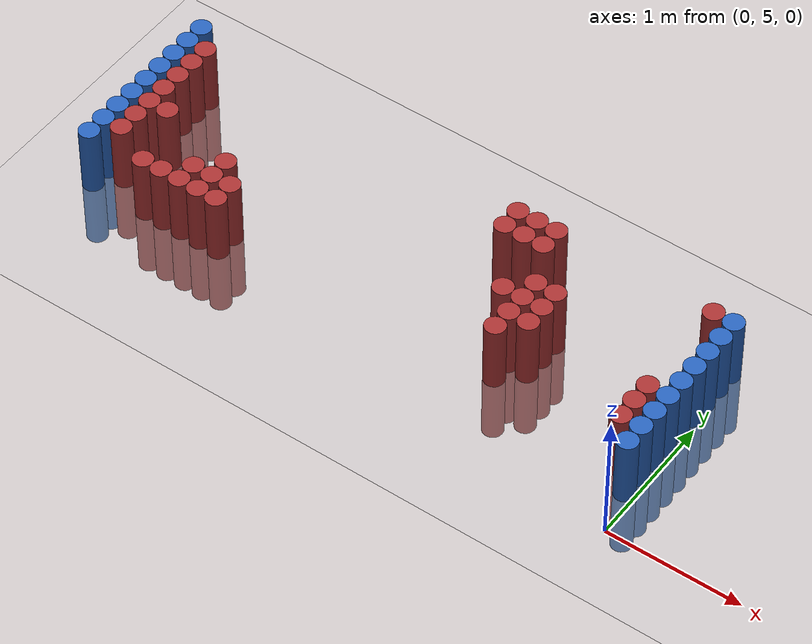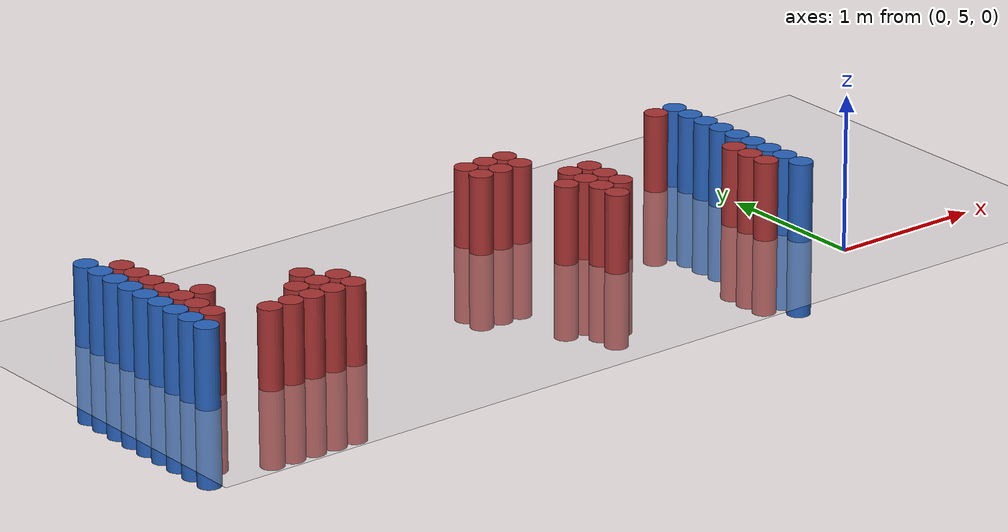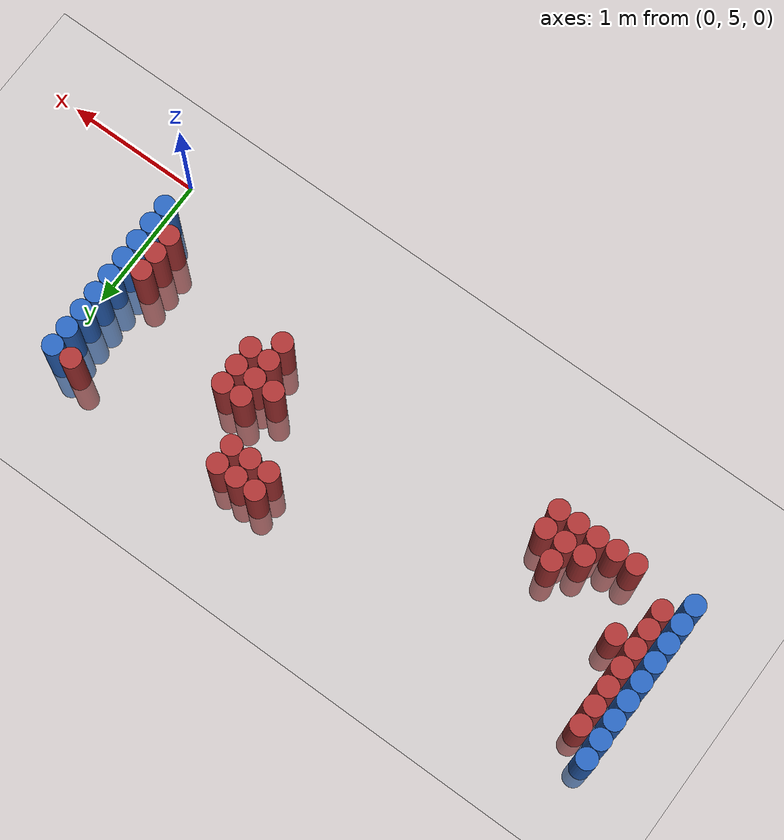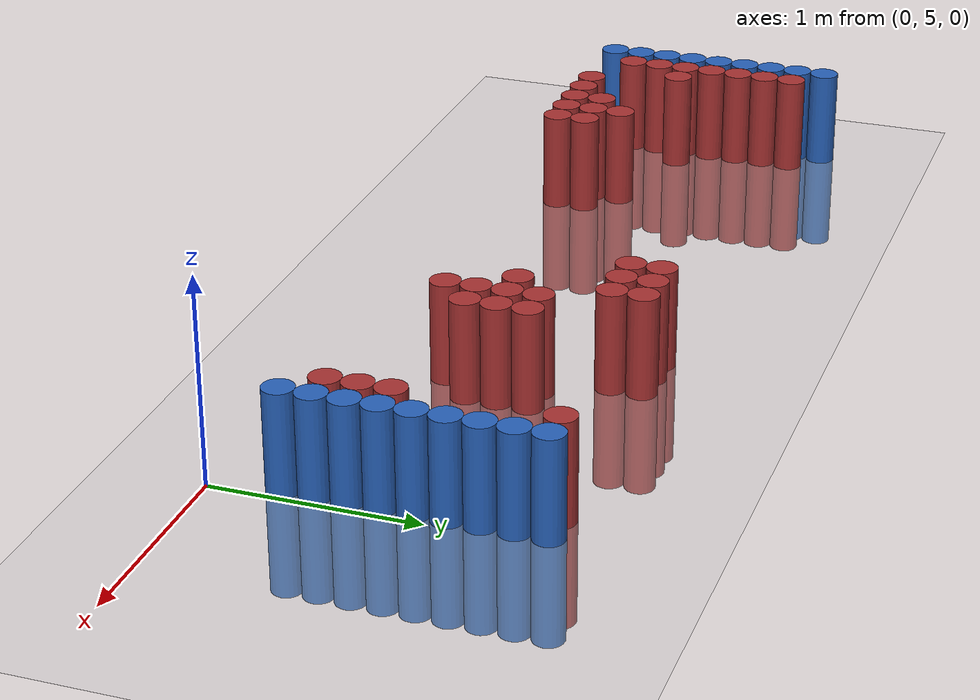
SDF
<sdf version="1.6">
 <world name="default">
  <model name="ground_plane">
   <static>1</static>
   <link name="link">
    <collision name="collision">
     <geometry><plane><normal>0 0 1</normal><size>100 100</size></plane></geometry>
     <surface><friction><ode><mu>100</mu><mu2>50</mu2></ode></friction></surface>
    </collision>
    <visual name="visual">
     <cast_shadows>0</cast_shadows>
     <geometry><plane><normal>0 0 1</normal><size>100 100</size></plane></geometry>
     <material>
      <script><uri>file://media/materials/scripts/gazebo.material</uri><name>Gazebo/Grey</name></script>
     </material>
    </visual>
   </link>
  </model>
  <model name="unit_cylinder_98">
   <static>1</static>
   <pose>-4.425000 5.475000 0.000000 0.000000 0.000000 0.000000</pose>
   <link name="link">
    <inertial>
     <mass>1</mass>
     <inertia><ixx>0.145833</ixx><ixy>0</ixy><ixz>0</ixz><iyy>0.145833</iyy><iyz>0</iyz><izz>0.125</izz></inertia>
    </inertial>
    <collision name="collision">
     <geometry><cylinder><radius>0.075000</radius><length>1</length></cylinder></geometry>
    </collision>
    <visual name="visual">
     <geometry><cylinder><radius>0.075000</radius><length>1</length></cylinder></geometry>
     <material>
      <ambient>0.152000 0.379000 0.720000 1</ambient>
      <diffuse>0.152000 0.379000 0.720000 1</diffuse>
     </material>
     <material>
      <script><name>Gazebo/Grey</name><uri>file://media/materials/scripts/gazebo.material</uri></script>
     </material>
    </visual>
   </link>
  </model>
  <model name="unit_cylinder_99">
   <static>1</static>
   <pose>-4.425000 5.625000 0.000000 0.000000 0.000000 0.000000</pose>
   <link name="link">
    <inertial>
     <mass>1</mass>
     <inertia><ixx>0.145833</ixx><ixy>0</ixy><ixz>0</ixz><iyy>0.145833</iyy><iyz>0</iyz><izz>0.125</izz></inertia>
    </inertial>
    <collision name="collision">
     <geometry><cylinder><radius>0.075000</radius><length>1</length></cylinder></geometry>
    </collision>
    <visual name="visual">
     <geometry><cylinder><radius>0.075000</radius><length>1</length></cylinder></geometry>
     <material>
      <ambient>0.152000 0.379000 0.720000 1</ambient>
      <diffuse>0.152000 0.379000 0.720000 1</diffuse>
     </material>
     <material>
      <script><name>Gazebo/Grey</name><uri>file://media/materials/scripts/gazebo.material</uri></script>
     </material>
    </visual>
   </link>
  </model>
  <model name="unit_cylinder_100">
   <static>1</static>
   <pose>-4.425000 5.775000 0.000000 0.000000 0.000000 0.000000</pose>
   <link name="link">
    <inertial>
     <mass>1</mass>
     <inertia><ixx>0.145833</ixx><ixy>0</ixy><ixz>0</ixz><iyy>0.145833</iyy><iyz>0</iyz><izz>0.125</izz></inertia>
    </inertial>
    <collision name="collision">
     <geometry><cylinder><radius>0.075000</radius><length>1</length></cylinder></geometry>
    </collision>
    <visual name="visual">
     <geometry><cylinder><radius>0.075000</radius><length>1</length></cylinder></geometry>
     <material>
      <ambient>0.152000 0.379000 0.720000 1</ambient>
      <diffuse>0.152000 0.379000 0.720000 1</diffuse>
     </material>
     <material>
      <script><name>Gazebo/Grey</name><uri>file://media/materials/scripts/gazebo.material</uri></script>
     </material>
    </visual>
   </link>
  </model>
  <model name="unit_cylinder_101">
   <static>1</static>
   <pose>-4.425000 5.925000 0.000000 0.000000 0.000000 0.000000</pose>
   <link name="link">
    <inertial>
     <mass>1</mass>
     <inertia><ixx>0.145833</ixx><ixy>0</ixy><ixz>0</ixz><iyy>0.145833</iyy><iyz>0</iyz><izz>0.125</izz></inertia>
    </inertial>
    <collision name="collision">
     <geometry><cylinder><radius>0.075000</radius><length>1</length></cylinder></geometry>
    </collision>
    <visual name="visual">
     <geometry><cylinder><radius>0.075000</radius><length>1</length></cylinder></geometry>
     <material>
      <ambient>0.152000 0.379000 0.720000 1</ambient>
      <diffuse>0.152000 0.379000 0.720000 1</diffuse>
     </material>
     <material>
      <script><name>Gazebo/Grey</name><uri>file://media/materials/scripts/gazebo.material</uri></script>
     </material>
    </visual>
   </link>
  </model>
  <model name="unit_cylinder_102">
   <static>1</static>
   <pose>-4.425000 6.075000 0.000000 0.000000 0.000000 0.000000</pose>
   <link name="link">
    <inertial>
     <mass>1</mass>
     <inertia><ixx>0.145833</ixx><ixy>0</ixy><ixz>0</ixz><iyy>0.145833</iyy><iyz>0</iyz><izz>0.125</izz></inertia>
    </inertial>
    <collision name="collision">
     <geometry><cylinder><radius>0.075000</radius><length>1</length></cylinder></geometry>
    </collision>
    <visual name="visual">
     <geometry><cylinder><radius>0.075000</radius><length>1</length></cylinder></geometry>
     <material>
      <ambient>0.152000 0.379000 0.720000 1</ambient>
      <diffuse>0.152000 0.379000 0.720000 1</diffuse>
     </material>
     <material>
      <script><name>Gazebo/Grey</name><uri>file://media/materials/scripts/gazebo.material</uri></script>
     </material>
    </visual>
   </link>
  </model>
  <model name="unit_cylinder_103">
   <static>1</static>
   <pose>-4.425000 6.225000 0.000000 0.000000 0.000000 0.000000</pose>
   <link name="link">
    <inertial>
     <mass>1</mass>
     <inertia><ixx>0.145833</ixx><ixy>0</ixy><ixz>0</ixz><iyy>0.145833</iyy><iyz>0</iyz><izz>0.125</izz></inertia>
    </inertial>
    <collision name="collision">
     <geometry><cylinder><radius>0.075000</radius><length>1</length></cylinder></geometry>
    </collision>
    <visual name="visual">
     <geometry><cylinder><radius>0.075000</radius><length>1</length></cylinder></geometry>
     <material>
      <ambient>0.152000 0.379000 0.720000 1</ambient>
      <diffuse>0.152000 0.379000 0.720000 1</diffuse>
     </material>
     <material>
      <script><name>Gazebo/Grey</name><uri>file://media/materials/scripts/gazebo.material</uri></script>
     </material>
    </visual>
   </link>
  </model>
  <model name="unit_cylinder_104">
   <static>1</static>
   <pose>-4.425000 6.375000 0.000000 0.000000 0.000000 0.000000</pose>
   <link name="link">
    <inertial>
     <mass>1</mass>
     <inertia><ixx>0.145833</ixx><ixy>0</ixy><ixz>0</ixz><iyy>0.145833</iyy><iyz>0</iyz><izz>0.125</izz></inertia>
    </inertial>
    <collision name="collision">
     <geometry><cylinder><radius>0.075000</radius><length>1</length></cylinder></geometry>
    </collision>
    <visual name="visual">
     <geometry><cylinder><radius>0.075000</radius><length>1</length></cylinder></geometry>
     <material>
      <ambient>0.152000 0.379000 0.720000 1</ambient>
      <diffuse>0.152000 0.379000 0.720000 1</diffuse>
     </material>
     <material>
      <script><name>Gazebo/Grey</name><uri>file://media/materials/scripts/gazebo.material</uri></script>
     </material>
    </visual>
   </link>
  </model>
  <model name="unit_cylinder_105">
   <static>1</static>
   <pose>-4.425000 6.525000 0.000000 0.000000 0.000000 0.000000</pose>
   <link name="link">
    <inertial>
     <mass>1</mass>
     <inertia><ixx>0.145833</ixx><ixy>0</ixy><ixz>0</ixz><iyy>0.145833</iyy><iyz>0</iyz><izz>0.125</izz></inertia>
    </inertial>
    <collision name="collision">
     <geometry><cylinder><radius>0.075000</radius><length>1</length></cylinder></geometry>
    </collision>
    <visual name="visual">
     <geometry><cylinder><radius>0.075000</radius><length>1</length></cylinder></geometry>
     <material>
      <ambient>0.152000 0.379000 0.720000 1</ambient>
      <diffuse>0.152000 0.379000 0.720000 1</diffuse>
     </material>
     <material>
      <script><name>Gazebo/Grey</name><uri>file://media/materials/scripts/gazebo.material</uri></script>
     </material>
    </visual>
   </link>
  </model>
  <model name="unit_cylinder_106">
   <static>1</static>
   <pose>-4.425000 6.675000 0.000000 0.000000 0.000000 0.000000</pose>
   <link name="link">
    <inertial>
     <mass>1</mass>
     <inertia><ixx>0.145833</ixx><ixy>0</ixy><ixz>0</ixz><iyy>0.145833</iyy><iyz>0</iyz><izz>0.125</izz></inertia>
    </inertial>
    <collision name="collision">
     <geometry><cylinder><radius>0.075000</radius><length>1</length></cylinder></geometry>
    </collision>
    <visual name="visual">
     <geometry><cylinder><radius>0.075000</radius><length>1</length></cylinder></geometry>
     <material>
      <ambient>0.152000 0.379000 0.720000 1</ambient>
      <diffuse>0.152000 0.379000 0.720000 1</diffuse>
     </material>
     <material>
      <script><name>Gazebo/Grey</name><uri>file://media/materials/scripts/gazebo.material</uri></script>
     </material>
    </visual>
   </link>
  </model>
  <model name="unit_cylinder_126">
   <static>1</static>
   <pose>-4.275000 5.625000 0.000000 0.000000 0.000000 0.000000</pose>
   <link name="link">
    <inertial>
     <mass>1</mass>
     <inertia><ixx>0.145833</ixx><ixy>0</ixy><ixz>0</ixz><iyy>0.145833</iyy><iyz>0</iyz><izz>0.125</izz></inertia>
    </inertial>
    <collision name="collision">
     <geometry><cylinder><radius>0.075000</radius><length>1</length></cylinder></geometry>
    </collision>
    <visual name="visual">
     <geometry><cylinder><radius>0.075000</radius><length>1</length></cylinder></geometry>
     <material>
      <ambient>0.648000 0.192000 0.192000 1</ambient>
      <diffuse>0.648000 0.192000 0.192000 1</diffuse>
     </material>
     <material>
      <script><name>Gazebo/Grey</name><uri>file://media/materials/scripts/gazebo.material</uri></script>
     </material>
    </visual>
   </link>
  </model>
  <model name="unit_cylinder_127">
   <static>1</static>
   <pose>-4.275000 5.775000 0.000000 0.000000 0.000000 0.000000</pose>
   <link name="link">
    <inertial>
     <mass>1</mass>
     <inertia><ixx>0.145833</ixx><ixy>0</ixy><ixz>0</ixz><iyy>0.145833</iyy><iyz>0</iyz><izz>0.125</izz></inertia>
    </inertial>
    <collision name="collision">
     <geometry><cylinder><radius>0.075000</radius><length>1</length></cylinder></geometry>
    </collision>
    <visual name="visual">
     <geometry><cylinder><radius>0.075000</radius><length>1</length></cylinder></geometry>
     <material>
      <ambient>0.648000 0.192000 0.192000 1</ambient>
      <diffuse>0.648000 0.192000 0.192000 1</diffuse>
     </material>
     <material>
      <script><name>Gazebo/Grey</name><uri>file://media/materials/scripts/gazebo.material</uri></script>
     </material>
    </visual>
   </link>
  </model>
  <model name="unit_cylinder_128">
   <static>1</static>
   <pose>-4.275000 5.925000 0.000000 0.000000 0.000000 0.000000</pose>
   <link name="link">
    <inertial>
     <mass>1</mass>
     <inertia><ixx>0.145833</ixx><ixy>0</ixy><ixz>0</ixz><iyy>0.145833</iyy><iyz>0</iyz><izz>0.125</izz></inertia>
    </inertial>
    <collision name="collision">
     <geometry><cylinder><radius>0.075000</radius><length>1</length></cylinder></geometry>
    </collision>
    <visual name="visual">
     <geometry><cylinder><radius>0.075000</radius><length>1</length></cylinder></geometry>
     <material>
      <ambient>0.648000 0.192000 0.192000 1</ambient>
      <diffuse>0.648000 0.192000 0.192000 1</diffuse>
     </material>
     <material>
      <script><name>Gazebo/Grey</name><uri>file://media/materials/scripts/gazebo.material</uri></script>
     </material>
    </visual>
   </link>
  </model>
  <model name="unit_cylinder_129">
   <static>1</static>
   <pose>-4.275000 6.075000 0.000000 0.000000 0.000000 0.000000</pose>
   <link name="link">
    <inertial>
     <mass>1</mass>
     <inertia><ixx>0.145833</ixx><ixy>0</ixy><ixz>0</ixz><iyy>0.145833</iyy><iyz>0</iyz><izz>0.125</izz></inertia>
    </inertial>
    <collision name="collision">
     <geometry><cylinder><radius>0.075000</radius><length>1</length></cylinder></geometry>
    </collision>
    <visual name="visual">
     <geometry><cylinder><radius>0.075000</radius><length>1</length></cylinder></geometry>
     <material>
      <ambient>0.648000 0.192000 0.192000 1</ambient>
      <diffuse>0.648000 0.192000 0.192000 1</diffuse>
     </material>
     <material>
      <script><name>Gazebo/Grey</name><uri>file://media/materials/scripts/gazebo.material</uri></script>
     </material>
    </visual>
   </link>
  </model>
  <model name="unit_cylinder_130">
   <static>1</static>
   <pose>-4.275000 6.225000 0.000000 0.000000 0.000000 0.000000</pose>
   <link name="link">
    <inertial>
     <mass>1</mass>
     <inertia><ixx>0.145833</ixx><ixy>0</ixy><ixz>0</ixz><iyy>0.145833</iyy><iyz>0</iyz><izz>0.125</izz></inertia>
    </inertial>
    <collision name="collision">
     <geometry><cylinder><radius>0.075000</radius><length>1</length></cylinder></geometry>
    </collision>
    <visual name="visual">
     <geometry><cylinder><radius>0.075000</radius><length>1</length></cylinder></geometry>
     <material>
      <ambient>0.648000 0.192000 0.192000 1</ambient>
      <diffuse>0.648000 0.192000 0.192000 1</diffuse>
     </material>
     <material>
      <script><name>Gazebo/Grey</name><uri>file://media/materials/scripts/gazebo.material</uri></script>
     </material>
    </visual>
   </link>
  </model>
  <model name="unit_cylinder_131">
   <static>1</static>
   <pose>-4.275000 6.375000 0.000000 0.000000 0.000000 0.000000</pose>
   <link name="link">
    <inertial>
     <mass>1</mass>
     <inertia><ixx>0.145833</ixx><ixy>0</ixy><ixz>0</ixz><iyy>0.145833</iyy><iyz>0</iyz><izz>0.125</izz></inertia>
    </inertial>
    <collision name="collision">
     <geometry><cylinder><radius>0.075000</radius><length>1</length></cylinder></geometry>
    </collision>
    <visual name="visual">
     <geometry><cylinder><radius>0.075000</radius><length>1</length></cylinder></geometry>
     <material>
      <ambient>0.648000 0.192000 0.192000 1</ambient>
      <diffuse>0.648000 0.192000 0.192000 1</diffuse>
     </material>
     <material>
      <script><name>Gazebo/Grey</name><uri>file://media/materials/scripts/gazebo.material</uri></script>
     </material>
    </visual>
   </link>
  </model>
  <model name="unit_cylinder_132">
   <static>1</static>
   <pose>-4.275000 6.525000 0.000000 0.000000 0.000000 0.000000</pose>
   <link name="link">
    <inertial>
     <mass>1</mass>
     <inertia><ixx>0.145833</ixx><ixy>0</ixy><ixz>0</ixz><iyy>0.145833</iyy><iyz>0</iyz><izz>0.125</izz></inertia>
    </inertial>
    <collision name="collision">
     <geometry><cylinder><radius>0.075000</radius><length>1</length></cylinder></geometry>
    </collision>
    <visual name="visual">
     <geometry><cylinder><radius>0.075000</radius><length>1</length></cylinder></geometry>
     <material>
      <ambient>0.648000 0.192000 0.192000 1</ambient>
      <diffuse>0.648000 0.192000 0.192000 1</diffuse>
     </material>
     <material>
      <script><name>Gazebo/Grey</name><uri>file://media/materials/scripts/gazebo.material</uri></script>
     </material>
    </visual>
   </link>
  </model>
  <model name="unit_cylinder_144">
   <static>1</static>
   <pose>-4.125000 5.925000 0.000000 0.000000 0.000000 0.000000</pose>
   <link name="link">
    <inertial>
     <mass>1</mass>
     <inertia><ixx>0.145833</ixx><ixy>0</ixy><ixz>0</ixz><iyy>0.145833</iyy><iyz>0</iyz><izz>0.125</izz></inertia>
    </inertial>
    <collision name="collision">
     <geometry><cylinder><radius>0.075000</radius><length>1</length></cylinder></geometry>
    </collision>
    <visual name="visual">
     <geometry><cylinder><radius>0.075000</radius><length>1</length></cylinder></geometry>
     <material>
      <ambient>0.648000 0.192000 0.192000 1</ambient>
      <diffuse>0.648000 0.192000 0.192000 1</diffuse>
     </material>
     <material>
      <script><name>Gazebo/Grey</name><uri>file://media/materials/scripts/gazebo.material</uri></script>
     </material>
    </visual>
   </link>
  </model>
  <model name="unit_cylinder_153">
   <static>1</static>
   <pose>-3.975000 5.475000 0.000000 0.000000 0.000000 0.000000</pose>
   <link name="link">
    <inertial>
     <mass>1</mass>
     <inertia><ixx>0.145833</ixx><ixy>0</ixy><ixz>0</ixz><iyy>0.145833</iyy><iyz>0</iyz><izz>0.125</izz></inertia>
    </inertial>
    <collision name="collision">
     <geometry><cylinder><radius>0.075000</radius><length>1</length></cylinder></geometry>
    </collision>
    <visual name="visual">
     <geometry><cylinder><radius>0.075000</radius><length>1</length></cylinder></geometry>
     <material>
      <ambient>0.648000 0.192000 0.192000 1</ambient>
      <diffuse>0.648000 0.192000 0.192000 1</diffuse>
     </material>
     <material>
      <script><name>Gazebo/Grey</name><uri>file://media/materials/scripts/gazebo.material</uri></script>
     </material>
    </visual>
   </link>
  </model>
  <model name="unit_cylinder_159">
   <static>1</static>
   <pose>-3.825000 5.475000 0.000000 0.000000 0.000000 0.000000</pose>
   <link name="link">
    <inertial>
     <mass>1</mass>
     <inertia><ixx>0.145833</ixx><ixy>0</ixy><ixz>0</ixz><iyy>0.145833</iyy><iyz>0</iyz><izz>0.125</izz></inertia>
    </inertial>
    <collision name="collision">
     <geometry><cylinder><radius>0.075000</radius><length>1</length></cylinder></geometry>
    </collision>
    <visual name="visual">
     <geometry><cylinder><radius>0.075000</radius><length>1</length></cylinder></geometry>
     <material>
      <ambient>0.648000 0.192000 0.192000 1</ambient>
      <diffuse>0.648000 0.192000 0.192000 1</diffuse>
     </material>
     <material>
      <script><name>Gazebo/Grey</name><uri>file://media/materials/scripts/gazebo.material</uri></script>
     </material>
    </visual>
   </link>
  </model>
  <model name="unit_cylinder_164">
   <static>1</static>
   <pose>-3.675000 5.475000 0.000000 0.000000 0.000000 0.000000</pose>
   <link name="link">
    <inertial>
     <mass>1</mass>
     <inertia><ixx>0.145833</ixx><ixy>0</ixy><ixz>0</ixz><iyy>0.145833</iyy><iyz>0</iyz><izz>0.125</izz></inertia>
    </inertial>
    <collision name="collision">
     <geometry><cylinder><radius>0.075000</radius><length>1</length></cylinder></geometry>
    </collision>
    <visual name="visual">
     <geometry><cylinder><radius>0.075000</radius><length>1</length></cylinder></geometry>
     <material>
      <ambient>0.648000 0.192000 0.192000 1</ambient>
      <diffuse>0.648000 0.192000 0.192000 1</diffuse>
     </material>
     <material>
      <script><name>Gazebo/Grey</name><uri>file://media/materials/scripts/gazebo.material</uri></script>
     </material>
    </visual>
   </link>
  </model>
  <model name="unit_cylinder_165">
   <static>1</static>
   <pose>-3.675000 5.625000 0.000000 0.000000 0.000000 0.000000</pose>
   <link name="link">
    <inertial>
     <mass>1</mass>
     <inertia><ixx>0.145833</ixx><ixy>0</ixy><ixz>0</ixz><iyy>0.145833</iyy><iyz>0</iyz><izz>0.125</izz></inertia>
    </inertial>
    <collision name="collision">
     <geometry><cylinder><radius>0.075000</radius><length>1</length></cylinder></geometry>
    </collision>
    <visual name="visual">
     <geometry><cylinder><radius>0.075000</radius><length>1</length></cylinder></geometry>
     <material>
      <ambient>0.648000 0.192000 0.192000 1</ambient>
      <diffuse>0.648000 0.192000 0.192000 1</diffuse>
     </material>
     <material>
      <script><name>Gazebo/Grey</name><uri>file://media/materials/scripts/gazebo.material</uri></script>
     </material>
    </visual>
   </link>
  </model>
  <model name="unit_cylinder_171">
   <static>1</static>
   <pose>-3.525000 5.475000 0.000000 0.000000 0.000000 0.000000</pose>
   <link name="link">
    <inertial>
     <mass>1</mass>
     <inertia><ixx>0.145833</ixx><ixy>0</ixy><ixz>0</ixz><iyy>0.145833</iyy><iyz>0</iyz><izz>0.125</izz></inertia>
    </inertial>
    <collision name="collision">
     <geometry><cylinder><radius>0.075000</radius><length>1</length></cylinder></geometry>
    </collision>
    <visual name="visual">
     <geometry><cylinder><radius>0.075000</radius><length>1</length></cylinder></geometry>
     <material>
      <ambient>0.648000 0.192000 0.192000 1</ambient>
      <diffuse>0.648000 0.192000 0.192000 1</diffuse>
     </material>
     <material>
      <script><name>Gazebo/Grey</name><uri>file://media/materials/scripts/gazebo.material</uri></script>
     </material>
    </visual>
   </link>
  </model>
  <model name="unit_cylinder_172">
   <static>1</static>
   <pose>-3.525000 5.625000 0.000000 0.000000 0.000000 0.000000</pose>
   <link name="link">
    <inertial>
     <mass>1</mass>
     <inertia><ixx>0.145833</ixx><ixy>0</ixy><ixz>0</ixz><iyy>0.145833</iyy><iyz>0</iyz><izz>0.125</izz></inertia>
    </inertial>
    <collision name="collision">
     <geometry><cylinder><radius>0.075000</radius><length>1</length></cylinder></geometry>
    </collision>
    <visual name="visual">
     <geometry><cylinder><radius>0.075000</radius><length>1</length></cylinder></geometry>
     <material>
      <ambient>0.648000 0.192000 0.192000 1</ambient>
      <diffuse>0.648000 0.192000 0.192000 1</diffuse>
     </material>
     <material>
      <script><name>Gazebo/Grey</name><uri>file://media/materials/scripts/gazebo.material</uri></script>
     </material>
    </visual>
   </link>
  </model>
  <model name="unit_cylinder_173">
   <static>1</static>
   <pose>-3.525000 5.775000 0.000000 0.000000 0.000000 0.000000</pose>
   <link name="link">
    <inertial>
     <mass>1</mass>
     <inertia><ixx>0.145833</ixx><ixy>0</ixy><ixz>0</ixz><iyy>0.145833</iyy><iyz>0</iyz><izz>0.125</izz></inertia>
    </inertial>
    <collision name="collision">
     <geometry><cylinder><radius>0.075000</radius><length>1</length></cylinder></geometry>
    </collision>
    <visual name="visual">
     <geometry><cylinder><radius>0.075000</radius><length>1</length></cylinder></geometry>
     <material>
      <ambient>0.648000 0.192000 0.192000 1</ambient>
      <diffuse>0.648000 0.192000 0.192000 1</diffuse>
     </material>
     <material>
      <script><name>Gazebo/Grey</name><uri>file://media/materials/scripts/gazebo.material</uri></script>
     </material>
    </visual>
   </link>
  </model>
  <model name="unit_cylinder_178">
   <static>1</static>
   <pose>-3.375000 5.475000 0.000000 0.000000 0.000000 0.000000</pose>
   <link name="link">
    <inertial>
     <mass>1</mass>
     <inertia><ixx>0.145833</ixx><ixy>0</ixy><ixz>0</ixz><iyy>0.145833</iyy><iyz>0</iyz><izz>0.125</izz></inertia>
    </inertial>
    <collision name="collision">
     <geometry><cylinder><radius>0.075000</radius><length>1</length></cylinder></geometry>
    </collision>
    <visual name="visual">
     <geometry><cylinder><radius>0.075000</radius><length>1</length></cylinder></geometry>
     <material>
      <ambient>0.648000 0.192000 0.192000 1</ambient>
      <diffuse>0.648000 0.192000 0.192000 1</diffuse>
     </material>
     <material>
      <script><name>Gazebo/Grey</name><uri>file://media/materials/scripts/gazebo.material</uri></script>
     </material>
    </visual>
   </link>
  </model>
  <model name="unit_cylinder_179">
   <static>1</static>
   <pose>-3.375000 5.625000 0.000000 0.000000 0.000000 0.000000</pose>
   <link name="link">
    <inertial>
     <mass>1</mass>
     <inertia><ixx>0.145833</ixx><ixy>0</ixy><ixz>0</ixz><iyy>0.145833</iyy><iyz>0</iyz><izz>0.125</izz></inertia>
    </inertial>
    <collision name="collision">
     <geometry><cylinder><radius>0.075000</radius><length>1</length></cylinder></geometry>
    </collision>
    <visual name="visual">
     <geometry><cylinder><radius>0.075000</radius><length>1</length></cylinder></geometry>
     <material>
      <ambient>0.648000 0.192000 0.192000 1</ambient>
      <diffuse>0.648000 0.192000 0.192000 1</diffuse>
     </material>
     <material>
      <script><name>Gazebo/Grey</name><uri>file://media/materials/scripts/gazebo.material</uri></script>
     </material>
    </visual>
   </link>
  </model>
  <model name="unit_cylinder_207">
   <static>1</static>
   <pose>-1.725000 6.375000 0.000000 0.000000 0.000000 0.000000</pose>
   <link name="link">
    <inertial>
     <mass>1</mass>
     <inertia><ixx>0.145833</ixx><ixy>0</ixy><ixz>0</ixz><iyy>0.145833</iyy><iyz>0</iyz><izz>0.125</izz></inertia>
    </inertial>
    <collision name="collision">
     <geometry><cylinder><radius>0.075000</radius><length>1</length></cylinder></geometry>
    </collision>
    <visual name="visual">
     <geometry><cylinder><radius>0.075000</radius><length>1</length></cylinder></geometry>
     <material>
      <ambient>0.648000 0.192000 0.192000 1</ambient>
      <diffuse>0.648000 0.192000 0.192000 1</diffuse>
     </material>
     <material>
      <script><name>Gazebo/Grey</name><uri>file://media/materials/scripts/gazebo.material</uri></script>
     </material>
    </visual>
   </link>
  </model>
  <model name="unit_cylinder_208">
   <static>1</static>
   <pose>-1.725000 6.525000 0.000000 0.000000 0.000000 0.000000</pose>
   <link name="link">
    <inertial>
     <mass>1</mass>
     <inertia><ixx>0.145833</ixx><ixy>0</ixy><ixz>0</ixz><iyy>0.145833</iyy><iyz>0</iyz><izz>0.125</izz></inertia>
    </inertial>
    <collision name="collision">
     <geometry><cylinder><radius>0.075000</radius><length>1</length></cylinder></geometry>
    </collision>
    <visual name="visual">
     <geometry><cylinder><radius>0.075000</radius><length>1</length></cylinder></geometry>
     <material>
      <ambient>0.648000 0.192000 0.192000 1</ambient>
      <diffuse>0.648000 0.192000 0.192000 1</diffuse>
     </material>
     <material>
      <script><name>Gazebo/Grey</name><uri>file://media/materials/scripts/gazebo.material</uri></script>
     </material>
    </visual>
   </link>
  </model>
  <model name="unit_cylinder_211">
   <static>1</static>
   <pose>-1.575000 6.375000 0.000000 0.000000 0.000000 0.000000</pose>
   <link name="link">
    <inertial>
     <mass>1</mass>
     <inertia><ixx>0.145833</ixx><ixy>0</ixy><ixz>0</ixz><iyy>0.145833</iyy><iyz>0</iyz><izz>0.125</izz></inertia>
    </inertial>
    <collision name="collision">
     <geometry><cylinder><radius>0.075000</radius><length>1</length></cylinder></geometry>
    </collision>
    <visual name="visual">
     <geometry><cylinder><radius>0.075000</radius><length>1</length></cylinder></geometry>
     <material>
      <ambient>0.648000 0.192000 0.192000 1</ambient>
      <diffuse>0.648000 0.192000 0.192000 1</diffuse>
     </material>
     <material>
      <script><name>Gazebo/Grey</name><uri>file://media/materials/scripts/gazebo.material</uri></script>
     </material>
    </visual>
   </link>
  </model>
  <model name="unit_cylinder_212">
   <static>1</static>
   <pose>-1.575000 6.525000 0.000000 0.000000 0.000000 0.000000</pose>
   <link name="link">
    <inertial>
     <mass>1</mass>
     <inertia><ixx>0.145833</ixx><ixy>0</ixy><ixz>0</ixz><iyy>0.145833</iyy><iyz>0</iyz><izz>0.125</izz></inertia>
    </inertial>
    <collision name="collision">
     <geometry><cylinder><radius>0.075000</radius><length>1</length></cylinder></geometry>
    </collision>
    <visual name="visual">
     <geometry><cylinder><radius>0.075000</radius><length>1</length></cylinder></geometry>
     <material>
      <ambient>0.648000 0.192000 0.192000 1</ambient>
      <diffuse>0.648000 0.192000 0.192000 1</diffuse>
     </material>
     <material>
      <script><name>Gazebo/Grey</name><uri>file://media/materials/scripts/gazebo.material</uri></script>
     </material>
    </visual>
   </link>
  </model>
  <model name="unit_cylinder_217">
   <static>1</static>
   <pose>-1.425000 5.925000 0.000000 0.000000 0.000000 0.000000</pose>
   <link name="link">
    <inertial>
     <mass>1</mass>
     <inertia><ixx>0.145833</ixx><ixy>0</ixy><ixz>0</ixz><iyy>0.145833</iyy><iyz>0</iyz><izz>0.125</izz></inertia>
    </inertial>
    <collision name="collision">
     <geometry><cylinder><radius>0.075000</radius><length>1</length></cylinder></geometry>
    </collision>
    <visual name="visual">
     <geometry><cylinder><radius>0.075000</radius><length>1</length></cylinder></geometry>
     <material>
      <ambient>0.648000 0.192000 0.192000 1</ambient>
      <diffuse>0.648000 0.192000 0.192000 1</diffuse>
     </material>
     <material>
      <script><name>Gazebo/Grey</name><uri>file://media/materials/scripts/gazebo.material</uri></script>
     </material>
    </visual>
   </link>
  </model>
  <model name="unit_cylinder_218">
   <static>1</static>
   <pose>-1.425000 6.375000 0.000000 0.000000 0.000000 0.000000</pose>
   <link name="link">
    <inertial>
     <mass>1</mass>
     <inertia><ixx>0.145833</ixx><ixy>0</ixy><ixz>0</ixz><iyy>0.145833</iyy><iyz>0</iyz><izz>0.125</izz></inertia>
    </inertial>
    <collision name="collision">
     <geometry><cylinder><radius>0.075000</radius><length>1</length></cylinder></geometry>
    </collision>
    <visual name="visual">
     <geometry><cylinder><radius>0.075000</radius><length>1</length></cylinder></geometry>
     <material>
      <ambient>0.648000 0.192000 0.192000 1</ambient>
      <diffuse>0.648000 0.192000 0.192000 1</diffuse>
     </material>
     <material>
      <script><name>Gazebo/Grey</name><uri>file://media/materials/scripts/gazebo.material</uri></script>
     </material>
    </visual>
   </link>
  </model>
  <model name="unit_cylinder_219">
   <static>1</static>
   <pose>-1.425000 6.525000 0.000000 0.000000 0.000000 0.000000</pose>
   <link name="link">
    <inertial>
     <mass>1</mass>
     <inertia><ixx>0.145833</ixx><ixy>0</ixy><ixz>0</ixz><iyy>0.145833</iyy><iyz>0</iyz><izz>0.125</izz></inertia>
    </inertial>
    <collision name="collision">
     <geometry><cylinder><radius>0.075000</radius><length>1</length></cylinder></geometry>
    </collision>
    <visual name="visual">
     <geometry><cylinder><radius>0.075000</radius><length>1</length></cylinder></geometry>
     <material>
      <ambient>0.648000 0.192000 0.192000 1</ambient>
      <diffuse>0.648000 0.192000 0.192000 1</diffuse>
     </material>
     <material>
      <script><name>Gazebo/Grey</name><uri>file://media/materials/scripts/gazebo.material</uri></script>
     </material>
    </visual>
   </link>
  </model>
  <model name="unit_cylinder_224">
   <static>1</static>
   <pose>-1.275000 5.625000 0.000000 0.000000 0.000000 0.000000</pose>
   <link name="link">
    <inertial>
     <mass>1</mass>
     <inertia><ixx>0.145833</ixx><ixy>0</ixy><ixz>0</ixz><iyy>0.145833</iyy><iyz>0</iyz><izz>0.125</izz></inertia>
    </inertial>
    <collision name="collision">
     <geometry><cylinder><radius>0.075000</radius><length>1</length></cylinder></geometry>
    </collision>
    <visual name="visual">
     <geometry><cylinder><radius>0.075000</radius><length>1</length></cylinder></geometry>
     <material>
      <ambient>0.648000 0.192000 0.192000 1</ambient>
      <diffuse>0.648000 0.192000 0.192000 1</diffuse>
     </material>
     <material>
      <script><name>Gazebo/Grey</name><uri>file://media/materials/scripts/gazebo.material</uri></script>
     </material>
    </visual>
   </link>
  </model>
  <model name="unit_cylinder_225">
   <static>1</static>
   <pose>-1.275000 5.775000 0.000000 0.000000 0.000000 0.000000</pose>
   <link name="link">
    <inertial>
     <mass>1</mass>
     <inertia><ixx>0.145833</ixx><ixy>0</ixy><ixz>0</ixz><iyy>0.145833</iyy><iyz>0</iyz><izz>0.125</izz></inertia>
    </inertial>
    <collision name="collision">
     <geometry><cylinder><radius>0.075000</radius><length>1</length></cylinder></geometry>
    </collision>
    <visual name="visual">
     <geometry><cylinder><radius>0.075000</radius><length>1</length></cylinder></geometry>
     <material>
      <ambient>0.648000 0.192000 0.192000 1</ambient>
      <diffuse>0.648000 0.192000 0.192000 1</diffuse>
     </material>
     <material>
      <script><name>Gazebo/Grey</name><uri>file://media/materials/scripts/gazebo.material</uri></script>
     </material>
    </visual>
   </link>
  </model>
  <model name="unit_cylinder_226">
   <static>1</static>
   <pose>-1.275000 5.925000 0.000000 0.000000 0.000000 0.000000</pose>
   <link name="link">
    <inertial>
     <mass>1</mass>
     <inertia><ixx>0.145833</ixx><ixy>0</ixy><ixz>0</ixz><iyy>0.145833</iyy><iyz>0</iyz><izz>0.125</izz></inertia>
    </inertial>
    <collision name="collision">
     <geometry><cylinder><radius>0.075000</radius><length>1</length></cylinder></geometry>
    </collision>
    <visual name="visual">
     <geometry><cylinder><radius>0.075000</radius><length>1</length></cylinder></geometry>
     <material>
      <ambient>0.648000 0.192000 0.192000 1</ambient>
      <diffuse>0.648000 0.192000 0.192000 1</diffuse>
     </material>
     <material>
      <script><name>Gazebo/Grey</name><uri>file://media/materials/scripts/gazebo.material</uri></script>
     </material>
    </visual>
   </link>
  </model>
  <model name="unit_cylinder_227">
   <static>1</static>
   <pose>-1.275000 6.075000 0.000000 0.000000 0.000000 0.000000</pose>
   <link name="link">
    <inertial>
     <mass>1</mass>
     <inertia><ixx>0.145833</ixx><ixy>0</ixy><ixz>0</ixz><iyy>0.145833</iyy><iyz>0</iyz><izz>0.125</izz></inertia>
    </inertial>
    <collision name="collision">
     <geometry><cylinder><radius>0.075000</radius><length>1</length></cylinder></geometry>
    </collision>
    <visual name="visual">
     <geometry><cylinder><radius>0.075000</radius><length>1</length></cylinder></geometry>
     <material>
      <ambient>0.648000 0.192000 0.192000 1</ambient>
      <diffuse>0.648000 0.192000 0.192000 1</diffuse>
     </material>
     <material>
      <script><name>Gazebo/Grey</name><uri>file://media/materials/scripts/gazebo.material</uri></script>
     </material>
    </visual>
   </link>
  </model>
  <model name="unit_cylinder_232">
   <static>1</static>
   <pose>-1.125000 5.775000 0.000000 0.000000 0.000000 0.000000</pose>
   <link name="link">
    <inertial>
     <mass>1</mass>
     <inertia><ixx>0.145833</ixx><ixy>0</ixy><ixz>0</ixz><iyy>0.145833</iyy><iyz>0</iyz><izz>0.125</izz></inertia>
    </inertial>
    <collision name="collision">
     <geometry><cylinder><radius>0.075000</radius><length>1</length></cylinder></geometry>
    </collision>
    <visual name="visual">
     <geometry><cylinder><radius>0.075000</radius><length>1</length></cylinder></geometry>
     <material>
      <ambient>0.648000 0.192000 0.192000 1</ambient>
      <diffuse>0.648000 0.192000 0.192000 1</diffuse>
     </material>
     <material>
      <script><name>Gazebo/Grey</name><uri>file://media/materials/scripts/gazebo.material</uri></script>
     </material>
    </visual>
   </link>
  </model>
  <model name="unit_cylinder_233">
   <static>1</static>
   <pose>-1.125000 5.925000 0.000000 0.000000 0.000000 0.000000</pose>
   <link name="link">
    <inertial>
     <mass>1</mass>
     <inertia><ixx>0.145833</ixx><ixy>0</ixy><ixz>0</ixz><iyy>0.145833</iyy><iyz>0</iyz><izz>0.125</izz></inertia>
    </inertial>
    <collision name="collision">
     <geometry><cylinder><radius>0.075000</radius><length>1</length></cylinder></geometry>
    </collision>
    <visual name="visual">
     <geometry><cylinder><radius>0.075000</radius><length>1</length></cylinder></geometry>
     <material>
      <ambient>0.648000 0.192000 0.192000 1</ambient>
      <diffuse>0.648000 0.192000 0.192000 1</diffuse>
     </material>
     <material>
      <script><name>Gazebo/Grey</name><uri>file://media/materials/scripts/gazebo.material</uri></script>
     </material>
    </visual>
   </link>
  </model>
  <model name="unit_cylinder_234">
   <static>1</static>
   <pose>-1.125000 6.075000 0.000000 0.000000 0.000000 0.000000</pose>
   <link name="link">
    <inertial>
     <mass>1</mass>
     <inertia><ixx>0.145833</ixx><ixy>0</ixy><ixz>0</ixz><iyy>0.145833</iyy><iyz>0</iyz><izz>0.125</izz></inertia>
    </inertial>
    <collision name="collision">
     <geometry><cylinder><radius>0.075000</radius><length>1</length></cylinder></geometry>
    </collision>
    <visual name="visual">
     <geometry><cylinder><radius>0.075000</radius><length>1</length></cylinder></geometry>
     <material>
      <ambient>0.648000 0.192000 0.192000 1</ambient>
      <diffuse>0.648000 0.192000 0.192000 1</diffuse>
     </material>
     <material>
      <script><name>Gazebo/Grey</name><uri>file://media/materials/scripts/gazebo.material</uri></script>
     </material>
    </visual>
   </link>
  </model>
  <model name="unit_cylinder_273">
   <static>1</static>
   <pose>-0.225000 5.475000 0.000000 0.000000 0.000000 0.000000</pose>
   <link name="link">
    <inertial>
     <mass>1</mass>
     <inertia><ixx>0.145833</ixx><ixy>0</ixy><ixz>0</ixz><iyy>0.145833</iyy><iyz>0</iyz><izz>0.125</izz></inertia>
    </inertial>
    <collision name="collision">
     <geometry><cylinder><radius>0.075000</radius><length>1</length></cylinder></geometry>
    </collision>
    <visual name="visual">
     <geometry><cylinder><radius>0.075000</radius><length>1</length></cylinder></geometry>
     <material>
      <ambient>0.648000 0.192000 0.192000 1</ambient>
      <diffuse>0.648000 0.192000 0.192000 1</diffuse>
     </material>
     <material>
      <script><name>Gazebo/Grey</name><uri>file://media/materials/scripts/gazebo.material</uri></script>
     </material>
    </visual>
   </link>
  </model>
  <model name="unit_cylinder_274">
   <static>1</static>
   <pose>-0.225000 5.625000 0.000000 0.000000 0.000000 0.000000</pose>
   <link name="link">
    <inertial>
     <mass>1</mass>
     <inertia><ixx>0.145833</ixx><ixy>0</ixy><ixz>0</ixz><iyy>0.145833</iyy><iyz>0</iyz><izz>0.125</izz></inertia>
    </inertial>
    <collision name="collision">
     <geometry><cylinder><radius>0.075000</radius><length>1</length></cylinder></geometry>
    </collision>
    <visual name="visual">
     <geometry><cylinder><radius>0.075000</radius><length>1</length></cylinder></geometry>
     <material>
      <ambient>0.648000 0.192000 0.192000 1</ambient>
      <diffuse>0.648000 0.192000 0.192000 1</diffuse>
     </material>
     <material>
      <script><name>Gazebo/Grey</name><uri>file://media/materials/scripts/gazebo.material</uri></script>
     </material>
    </visual>
   </link>
  </model>
  <model name="unit_cylinder_275">
   <static>1</static>
   <pose>-0.225000 5.775000 0.000000 0.000000 0.000000 0.000000</pose>
   <link name="link">
    <inertial>
     <mass>1</mass>
     <inertia><ixx>0.145833</ixx><ixy>0</ixy><ixz>0</ixz><iyy>0.145833</iyy><iyz>0</iyz><izz>0.125</izz></inertia>
    </inertial>
    <collision name="collision">
     <geometry><cylinder><radius>0.075000</radius><length>1</length></cylinder></geometry>
    </collision>
    <visual name="visual">
     <geometry><cylinder><radius>0.075000</radius><length>1</length></cylinder></geometry>
     <material>
      <ambient>0.648000 0.192000 0.192000 1</ambient>
      <diffuse>0.648000 0.192000 0.192000 1</diffuse>
     </material>
     <material>
      <script><name>Gazebo/Grey</name><uri>file://media/materials/scripts/gazebo.material</uri></script>
     </material>
    </visual>
   </link>
  </model>
  <model name="unit_cylinder_276">
   <static>1</static>
   <pose>-0.225000 6.525000 0.000000 0.000000 0.000000 0.000000</pose>
   <link name="link">
    <inertial>
     <mass>1</mass>
     <inertia><ixx>0.145833</ixx><ixy>0</ixy><ixz>0</ixz><iyy>0.145833</iyy><iyz>0</iyz><izz>0.125</izz></inertia>
    </inertial>
    <collision name="collision">
     <geometry><cylinder><radius>0.075000</radius><length>1</length></cylinder></geometry>
    </collision>
    <visual name="visual">
     <geometry><cylinder><radius>0.075000</radius><length>1</length></cylinder></geometry>
     <material>
      <ambient>0.648000 0.192000 0.192000 1</ambient>
      <diffuse>0.648000 0.192000 0.192000 1</diffuse>
     </material>
     <material>
      <script><name>Gazebo/Grey</name><uri>file://media/materials/scripts/gazebo.material</uri></script>
     </material>
    </visual>
   </link>
  </model>
  <model name="unit_cylinder_289">
   <static>1</static>
   <pose>-0.075000 5.325000 0.000000 0.000000 0.000000 0.000000</pose>
   <link name="link">
    <inertial>
     <mass>1</mass>
     <inertia><ixx>0.145833</ixx><ixy>0</ixy><ixz>0</ixz><iyy>0.145833</iyy><iyz>0</iyz><izz>0.125</izz></inertia>
    </inertial>
    <collision name="collision">
     <geometry><cylinder><radius>0.075000</radius><length>1</length></cylinder></geometry>
    </collision>
    <visual name="visual">
     <geometry><cylinder><radius>0.075000</radius><length>1</length></cylinder></geometry>
     <material>
      <ambient>0.152000 0.379000 0.720000 1</ambient>
      <diffuse>0.152000 0.379000 0.720000 1</diffuse>
     </material>
     <material>
      <script><name>Gazebo/Grey</name><uri>file://media/materials/scripts/gazebo.material</uri></script>
     </material>
    </visual>
   </link>
  </model>
  <model name="unit_cylinder_290">
   <static>1</static>
   <pose>-0.075000 5.475000 0.000000 0.000000 0.000000 0.000000</pose>
   <link name="link">
    <inertial>
     <mass>1</mass>
     <inertia><ixx>0.145833</ixx><ixy>0</ixy><ixz>0</ixz><iyy>0.145833</iyy><iyz>0</iyz><izz>0.125</izz></inertia>
    </inertial>
    <collision name="collision">
     <geometry><cylinder><radius>0.075000</radius><length>1</length></cylinder></geometry>
    </collision>
    <visual name="visual">
     <geometry><cylinder><radius>0.075000</radius><length>1</length></cylinder></geometry>
     <material>
      <ambient>0.152000 0.379000 0.720000 1</ambient>
      <diffuse>0.152000 0.379000 0.720000 1</diffuse>
     </material>
     <material>
      <script><name>Gazebo/Grey</name><uri>file://media/materials/scripts/gazebo.material</uri></script>
     </material>
    </visual>
   </link>
  </model>
  <model name="unit_cylinder_291">
   <static>1</static>
   <pose>-0.075000 5.625000 0.000000 0.000000 0.000000 0.000000</pose>
   <link name="link">
    <inertial>
     <mass>1</mass>
     <inertia><ixx>0.145833</ixx><ixy>0</ixy><ixz>0</ixz><iyy>0.145833</iyy><iyz>0</iyz><izz>0.125</izz></inertia>
    </inertial>
    <collision name="collision">
     <geometry><cylinder><radius>0.075000</radius><length>1</length></cylinder></geometry>
    </collision>
    <visual name="visual">
     <geometry><cylinder><radius>0.075000</radius><length>1</length></cylinder></geometry>
     <material>
      <ambient>0.152000 0.379000 0.720000 1</ambient>
      <diffuse>0.152000 0.379000 0.720000 1</diffuse>
     </material>
     <material>
      <script><name>Gazebo/Grey</name><uri>file://media/materials/scripts/gazebo.material</uri></script>
     </material>
    </visual>
   </link>
  </model>
  <model name="unit_cylinder_292">
   <static>1</static>
   <pose>-0.075000 5.775000 0.000000 0.000000 0.000000 0.000000</pose>
   <link name="link">
    <inertial>
     <mass>1</mass>
     <inertia><ixx>0.145833</ixx><ixy>0</ixy><ixz>0</ixz><iyy>0.145833</iyy><iyz>0</iyz><izz>0.125</izz></inertia>
    </inertial>
    <collision name="collision">
     <geometry><cylinder><radius>0.075000</radius><length>1</length></cylinder></geometry>
    </collision>
    <visual name="visual">
     <geometry><cylinder><radius>0.075000</radius><length>1</length></cylinder></geometry>
     <material>
      <ambient>0.152000 0.379000 0.720000 1</ambient>
      <diffuse>0.152000 0.379000 0.720000 1</diffuse>
     </material>
     <material>
      <script><name>Gazebo/Grey</name><uri>file://media/materials/scripts/gazebo.material</uri></script>
     </material>
    </visual>
   </link>
  </model>
  <model name="unit_cylinder_293">
   <static>1</static>
   <pose>-0.075000 5.925000 0.000000 0.000000 0.000000 0.000000</pose>
   <link name="link">
    <inertial>
     <mass>1</mass>
     <inertia><ixx>0.145833</ixx><ixy>0</ixy><ixz>0</ixz><iyy>0.145833</iyy><iyz>0</iyz><izz>0.125</izz></inertia>
    </inertial>
    <collision name="collision">
     <geometry><cylinder><radius>0.075000</radius><length>1</length></cylinder></geometry>
    </collision>
    <visual name="visual">
     <geometry><cylinder><radius>0.075000</radius><length>1</length></cylinder></geometry>
     <material>
      <ambient>0.152000 0.379000 0.720000 1</ambient>
      <diffuse>0.152000 0.379000 0.720000 1</diffuse>
     </material>
     <material>
      <script><name>Gazebo/Grey</name><uri>file://media/materials/scripts/gazebo.material</uri></script>
     </material>
    </visual>
   </link>
  </model>
  <model name="unit_cylinder_294">
   <static>1</static>
   <pose>-0.075000 6.075000 0.000000 0.000000 0.000000 0.000000</pose>
   <link name="link">
    <inertial>
     <mass>1</mass>
     <inertia><ixx>0.145833</ixx><ixy>0</ixy><ixz>0</ixz><iyy>0.145833</iyy><iyz>0</iyz><izz>0.125</izz></inertia>
    </inertial>
    <collision name="collision">
     <geometry><cylinder><radius>0.075000</radius><length>1</length></cylinder></geometry>
    </collision>
    <visual name="visual">
     <geometry><cylinder><radius>0.075000</radius><length>1</length></cylinder></geometry>
     <material>
      <ambient>0.152000 0.379000 0.720000 1</ambient>
      <diffuse>0.152000 0.379000 0.720000 1</diffuse>
     </material>
     <material>
      <script><name>Gazebo/Grey</name><uri>file://media/materials/scripts/gazebo.material</uri></script>
     </material>
    </visual>
   </link>
  </model>
  <model name="unit_cylinder_295">
   <static>1</static>
   <pose>-0.075000 6.225000 0.000000 0.000000 0.000000 0.000000</pose>
   <link name="link">
    <inertial>
     <mass>1</mass>
     <inertia><ixx>0.145833</ixx><ixy>0</ixy><ixz>0</ixz><iyy>0.145833</iyy><iyz>0</iyz><izz>0.125</izz></inertia>
    </inertial>
    <collision name="collision">
     <geometry><cylinder><radius>0.075000</radius><length>1</length></cylinder></geometry>
    </collision>
    <visual name="visual">
     <geometry><cylinder><radius>0.075000</radius><length>1</length></cylinder></geometry>
     <material>
      <ambient>0.152000 0.379000 0.720000 1</ambient>
      <diffuse>0.152000 0.379000 0.720000 1</diffuse>
     </material>
     <material>
      <script><name>Gazebo/Grey</name><uri>file://media/materials/scripts/gazebo.material</uri></script>
     </material>
    </visual>
   </link>
  </model>
  <model name="unit_cylinder_296">
   <static>1</static>
   <pose>-0.075000 6.375000 0.000000 0.000000 0.000000 0.000000</pose>
   <link name="link">
    <inertial>
     <mass>1</mass>
     <inertia><ixx>0.145833</ixx><ixy>0</ixy><ixz>0</ixz><iyy>0.145833</iyy><iyz>0</iyz><izz>0.125</izz></inertia>
    </inertial>
    <collision name="collision">
     <geometry><cylinder><radius>0.075000</radius><length>1</length></cylinder></geometry>
    </collision>
    <visual name="visual">
     <geometry><cylinder><radius>0.075000</radius><length>1</length></cylinder></geometry>
     <material>
      <ambient>0.152000 0.379000 0.720000 1</ambient>
      <diffuse>0.152000 0.379000 0.720000 1</diffuse>
     </material>
     <material>
      <script><name>Gazebo/Grey</name><uri>file://media/materials/scripts/gazebo.material</uri></script>
     </material>
    </visual>
   </link>
  </model>
  <model name="unit_cylinder_297">
   <static>1</static>
   <pose>-0.075000 6.525000 0.000000 0.000000 0.000000 0.000000</pose>
   <link name="link">
    <inertial>
     <mass>1</mass>
     <inertia><ixx>0.145833</ixx><ixy>0</ixy><ixz>0</ixz><iyy>0.145833</iyy><iyz>0</iyz><izz>0.125</izz></inertia>
    </inertial>
    <collision name="collision">
     <geometry><cylinder><radius>0.075000</radius><length>1</length></cylinder></geometry>
    </collision>
    <visual name="visual">
     <geometry><cylinder><radius>0.075000</radius><length>1</length></cylinder></geometry>
     <material>
      <ambient>0.152000 0.379000 0.720000 1</ambient>
      <diffuse>0.152000 0.379000 0.720000 1</diffuse>
     </material>
     <material>
      <script><name>Gazebo/Grey</name><uri>file://media/materials/scripts/gazebo.material</uri></script>
     </material>
    </visual>
   </link>
  </model>
 </world>
</sdf>
